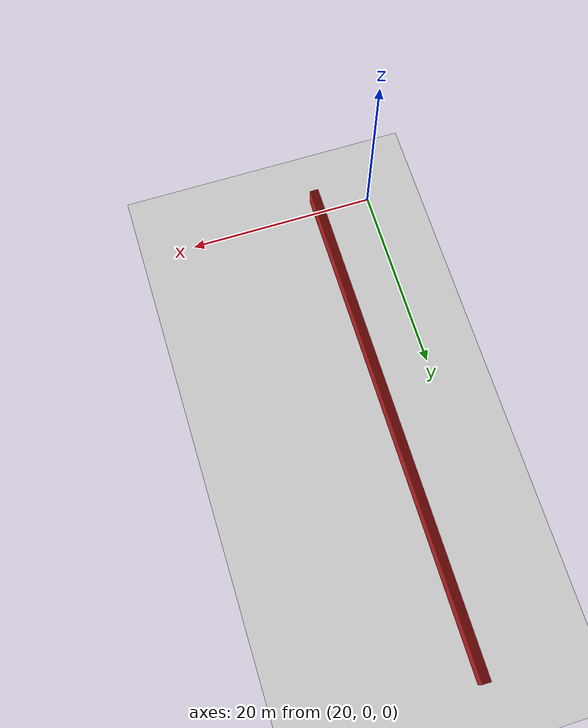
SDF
<sdf version="1.4">
 <world name="1_wall">
  <model name="ground_plane">
   <static>1</static>
   <link name="link">
    <collision name="collision">
     <geometry><plane><normal>0 0 1</normal><size>1000 1000</size></plane></geometry>
     <surface><friction><ode><mu>100</mu><mu2>50</mu2></ode></friction></surface>
    </collision>
    <visual name="visual">
     <cast_shadows>0</cast_shadows>
     <geometry><plane><normal>0 0 1</normal><size>10000 10000</size></plane></geometry>
     <material>
      <script><uri>file://media/materials/scripts/gazebo.material</uri><name>Gazebo/Grey</name></script>
     </material>
    </visual>
    <velocity_decay><linear>0</linear><angular>0</angular></velocity_decay>
   </link>
  </model>
  <model name="Wall_537">
   <static>1</static>
   <link name="Wall_537">
    <collision name="Wall_Collision_537">
     <geometry><box><size>53.65 0.05 2.5</size></box></geometry>
     <pose>0 0 1.25 0 -0 0</pose>
    </collision>
    <visual name="Wall_Visual_537">
     <pose>0 0 1.25 0 -0 0</pose>
     <geometry><box><size>53.65 0.05 2.5</size></box></geometry>
     <material>
      <script><uri>file://media/materials/scripts/gazebo.material</uri><name>Gazebo/Red</name></script>
     </material>
    </visual>
    <velocity_decay><linear>0</linear><angular>0</angular></velocity_decay>
    <pose>25.35 25.3 0 0 0 1.5707963267948966</pose>
   </link>
  </model>
  <model name="Wall_538">
   <static>1</static>
   <link name="Wall_538">
    <collision name="Wall_Collision_538">
     <geometry><box><size>53.65 0.05 2.5</size></box></geometry>
     <pose>0 0 1.25 0 -0 0</pose>
    </collision>
    <visual name="Wall_Visual_538">
     <pose>0 0 1.25 0 -0 0</pose>
     <geometry><box><size>53.65 0.05 2.5</size></box></geometry>
     <material>
      <script><uri>file://media/materials/scripts/gazebo.material</uri><name>Gazebo/Red</name></script>
     </material>
    </visual>
    <velocity_decay><linear>0</linear><angular>0</angular></velocity_decay>
    <pose>25.4 25.3 0 0 0 1.5707963267948966</pose>
   </link>
  </model>
  <model name="Wall_539">
   <static>1</static>
   <link name="Wall_539">
    <collision name="Wall_Collision_539">
     <geometry><box><size>53.65 0.05 2.5</size></box></geometry>
     <pose>0 0 1.25 0 -0 0</pose>
    </collision>
    <visual name="Wall_Visual_539">
     <pose>0 0 1.25 0 -0 0</pose>
     <geometry><box><size>53.65 0.05 2.5</size></box></geometry>
     <material>
      <script><uri>file://media/materials/scripts/gazebo.material</uri><name>Gazebo/Red</name></script>
     </material>
    </visual>
    <velocity_decay><linear>0</linear><angular>0</angular></velocity_decay>
    <pose>25.45 25.3 0 0 0 1.5707963267948966</pose>
   </link>
  </model>
  <model name="Wall_540">
   <static>1</static>
   <link name="Wall_540">
    <collision name="Wall_Collision_540">
     <geometry><box><size>53.65 0.05 2.5</size></box></geometry>
     <pose>0 0 1.25 0 -0 0</pose>
    </collision>
    <visual name="Wall_Visual_540">
     <pose>0 0 1.25 0 -0 0</pose>
     <geometry><box><size>53.65 0.05 2.5</size></box></geometry>
     <material>
      <script><uri>file://media/materials/scripts/gazebo.material</uri><name>Gazebo/Red</name></script>
     </material>
    </visual>
    <velocity_decay><linear>0</linear><angular>0</angular></velocity_decay>
    <pose>25.5 25.3 0 0 0 1.5707963267948966</pose>
   </link>
  </model>
  <model name="Wall_541">
   <static>1</static>
   <link name="Wall_541">
    <collision name="Wall_Collision_541">
     <geometry><box><size>53.65 0.05 2.5</size></box></geometry>
     <pose>0 0 1.25 0 -0 0</pose>
    </collision>
    <visual name="Wall_Visual_541">
     <pose>0 0 1.25 0 -0 0</pose>
     <geometry><box><size>53.65 0.05 2.5</size></box></geometry>
     <material>
      <script><uri>file://media/materials/scripts/gazebo.material</uri><name>Gazebo/Red</name></script>
     </material>
    </visual>
    <velocity_decay><linear>0</linear><angular>0</angular></velocity_decay>
    <pose>25.55 25.3 0 0 0 1.5707963267948966</pose>
   </link>
  </model>
  <model name="Wall_542">
   <static>1</static>
   <link name="Wall_542">
    <collision name="Wall_Collision_542">
     <geometry><box><size>53.65 0.05 2.5</size></box></geometry>
     <pose>0 0 1.25 0 -0 0</pose>
    </collision>
    <visual name="Wall_Visual_542">
     <pose>0 0 1.25 0 -0 0</pose>
     <geometry><box><size>53.65 0.05 2.5</size></box></geometry>
     <material>
      <script><uri>file://media/materials/scripts/gazebo.material</uri><name>Gazebo/Red</name></script>
     </material>
    </visual>
    <velocity_decay><linear>0</linear><angular>0</angular></velocity_decay>
    <pose>25.6 25.3 0 0 0 1.5707963267948966</pose>
   </link>
  </model>
  <model name="Wall_543">
   <static>1</static>
   <link name="Wall_543">
    <collision name="Wall_Collision_543">
     <geometry><box><size>53.65 0.05 2.5</size></box></geometry>
     <pose>0 0 1.25 0 -0 0</pose>
    </collision>
    <visual name="Wall_Visual_543">
     <pose>0 0 1.25 0 -0 0</pose>
     <geometry><box><size>53.65 0.05 2.5</size></box></geometry>
     <material>
      <script><uri>file://media/materials/scripts/gazebo.material</uri><name>Gazebo/Red</name></script>
     </material>
    </visual>
    <velocity_decay><linear>0</linear><angular>0</angular></velocity_decay>
    <pose>25.65 25.3 0 0 0 1.5707963267948966</pose>
   </link>
  </model>
  <model name="Wall_544">
   <static>1</static>
   <link name="Wall_544">
    <collision name="Wall_Collision_544">
     <geometry><box><size>53.65 0.05 2.5</size></box></geometry>
     <pose>0 0 1.25 0 -0 0</pose>
    </collision>
    <visual name="Wall_Visual_544">
     <pose>0 0 1.25 0 -0 0</pose>
     <geometry><box><size>53.65 0.05 2.5</size></box></geometry>
     <material>
      <script><uri>file://media/materials/scripts/gazebo.material</uri><name>Gazebo/Red</name></script>
     </material>
    </visual>
    <velocity_decay><linear>0</linear><angular>0</angular></velocity_decay>
    <pose>25.7 25.3 0 0 0 1.5707963267948966</pose>
   </link>
  </model>
  <model name="Wall_545">
   <static>1</static>
   <link name="Wall_545">
    <collision name="Wall_Collision_545">
     <geometry><box><size>53.65 0.05 2.5</size></box></geometry>
     <pose>0 0 1.25 0 -0 0</pose>
    </collision>
    <visual name="Wall_Visual_545">
     <pose>0 0 1.25 0 -0 0</pose>
     <geometry><box><size>53.65 0.05 2.5</size></box></geometry>
     <material>
      <script><uri>file://media/materials/scripts/gazebo.material</uri><name>Gazebo/Red</name></script>
     </material>
    </visual>
    <velocity_decay><linear>0</linear><angular>0</angular></velocity_decay>
    <pose>25.75 25.3 0 0 0 1.5707963267948966</pose>
   </link>
  </model>
  <model name="Wall_546">
   <static>1</static>
   <link name="Wall_546">
    <collision name="Wall_Collision_546">
     <geometry><box><size>53.65 0.05 2.5</size></box></geometry>
     <pose>0 0 1.25 0 -0 0</pose>
    </collision>
    <visual name="Wall_Visual_546">
     <pose>0 0 1.25 0 -0 0</pose>
     <geometry><box><size>53.65 0.05 2.5</size></box></geometry>
     <material>
      <script><uri>file://media/materials/scripts/gazebo.material</uri><name>Gazebo/Red</name></script>
     </material>
    </visual>
    <velocity_decay><linear>0</linear><angular>0</angular></velocity_decay>
    <pose>25.8 25.3 0 0 0 1.5707963267948966</pose>
   </link>
  </model>
  <model name="Wall_547">
   <static>1</static>
   <link name="Wall_547">
    <collision name="Wall_Collision_547">
     <geometry><box><size>53.65 0.05 2.5</size></box></geometry>
     <pose>0 0 1.25 0 -0 0</pose>
    </collision>
    <visual name="Wall_Visual_547">
     <pose>0 0 1.25 0 -0 0</pose>
     <geometry><box><size>53.65 0.05 2.5</size></box></geometry>
     <material>
      <script><uri>file://media/materials/scripts/gazebo.material</uri><name>Gazebo/Red</name></script>
     </material>
    </visual>
    <velocity_decay><linear>0</linear><angular>0</angular></velocity_decay>
    <pose>25.85 25.3 0 0 0 1.5707963267948966</pose>
   </link>
  </model>
  <model name="Wall_548">
   <static>1</static>
   <link name="Wall_548">
    <collision name="Wall_Collision_548">
     <geometry><box><size>53.65 0.05 2.5</size></box></geometry>
     <pose>0 0 1.25 0 -0 0</pose>
    </collision>
    <visual name="Wall_Visual_548">
     <pose>0 0 1.25 0 -0 0</pose>
     <geometry><box><size>53.65 0.05 2.5</size></box></geometry>
     <material>
      <script><uri>file://media/materials/scripts/gazebo.material</uri><name>Gazebo/Red</name></script>
     </material>
    </visual>
    <velocity_decay><linear>0</linear><angular>0</angular></velocity_decay>
    <pose>25.9 25.3 0 0 0 1.5707963267948966</pose>
   </link>
  </model>
  <model name="Wall_549">
   <static>1</static>
   <link name="Wall_549">
    <collision name="Wall_Collision_549">
     <geometry><box><size>53.65 0.05 2.5</size></box></geometry>
     <pose>0 0 1.25 0 -0 0</pose>
    </collision>
    <visual name="Wall_Visual_549">
     <pose>0 0 1.25 0 -0 0</pose>
     <geometry><box><size>53.65 0.05 2.5</size></box></geometry>
     <material>
      <script><uri>file://media/materials/scripts/gazebo.material</uri><name>Gazebo/Red</name></script>
     </material>
    </visual>
    <velocity_decay><linear>0</linear><angular>0</angular></velocity_decay>
    <pose>25.95 25.3 0 0 0 1.5707963267948966</pose>
   </link>
  </model>
  <model name="Wall_550">
   <static>1</static>
   <link name="Wall_550">
    <collision name="Wall_Collision_550">
     <geometry><box><size>53.65 0.05 2.5</size></box></geometry>
     <pose>0 0 1.25 0 -0 0</pose>
    </collision>
    <visual name="Wall_Visual_550">
     <pose>0 0 1.25 0 -0 0</pose>
     <geometry><box><size>53.65 0.05 2.5</size></box></geometry>
     <material>
      <script><uri>file://media/materials/scripts/gazebo.material</uri><name>Gazebo/Red</name></script>
     </material>
    </visual>
    <velocity_decay><linear>0</linear><angular>0</angular></velocity_decay>
    <pose>26.0 25.3 0 0 0 1.5707963267948966</pose>
   </link>
  </model>
  <model name="Wall_551">
   <static>1</static>
   <link name="Wall_551">
    <collision name="Wall_Collision_551">
     <geometry><box><size>53.65 0.05 2.5</size></box></geometry>
     <pose>0 0 1.25 0 -0 0</pose>
    </collision>
    <visual name="Wall_Visual_551">
     <pose>0 0 1.25 0 -0 0</pose>
     <geometry><box><size>53.65 0.05 2.5</size></box></geometry>
     <material>
      <script><uri>file://media/materials/scripts/gazebo.material</uri><name>Gazebo/Red</name></script>
     </material>
    </visual>
    <velocity_decay><linear>0</linear><angular>0</angular></velocity_decay>
    <pose>26.05 25.3 0 0 0 1.5707963267948966</pose>
   </link>
  </model>
  <model name="Wall_552">
   <static>1</static>
   <link name="Wall_552">
    <collision name="Wall_Collision_552">
     <geometry><box><size>53.65 0.05 2.5</size></box></geometry>
     <pose>0 0 1.25 0 -0 0</pose>
    </collision>
    <visual name="Wall_Visual_552">
     <pose>0 0 1.25 0 -0 0</pose>
     <geometry><box><size>53.65 0.05 2.5</size></box></geometry>
     <material>
      <script><uri>file://media/materials/scripts/gazebo.material</uri><name>Gazebo/Red</name></script>
     </material>
    </visual>
    <velocity_decay><linear>0</linear><angular>0</angular></velocity_decay>
    <pose>26.1 25.3 0 0 0 1.5707963267948966</pose>
   </link>
  </model>
  <model name="Wall_553">
   <static>1</static>
   <link name="Wall_553">
    <collision name="Wall_Collision_553">
     <geometry><box><size>53.65 0.05 2.5</size></box></geometry>
     <pose>0 0 1.25 0 -0 0</pose>
    </collision>
    <visual name="Wall_Visual_553">
     <pose>0 0 1.25 0 -0 0</pose>
     <geometry><box><size>53.65 0.05 2.5</size></box></geometry>
     <material>
      <script><uri>file://media/materials/scripts/gazebo.material</uri><name>Gazebo/Red</name></script>
     </material>
    </visual>
    <velocity_decay><linear>0</linear><angular>0</angular></velocity_decay>
    <pose>26.15 25.3 0 0 0 1.5707963267948966</pose>
   </link>
  </model>
  <model name="Wall_554">
   <static>1</static>
   <link name="Wall_554">
    <collision name="Wall_Collision_554">
     <geometry><box><size>53.65 0.05 2.5</size></box></geometry>
     <pose>0 0 1.25 0 -0 0</pose>
    </collision>
    <visual name="Wall_Visual_554">
     <pose>0 0 1.25 0 -0 0</pose>
     <geometry><box><size>53.65 0.05 2.5</size></box></geometry>
     <material>
      <script><uri>file://media/materials/scripts/gazebo.material</uri><name>Gazebo/Red</name></script>
     </material>
    </visual>
    <velocity_decay><linear>0</linear><angular>0</angular></velocity_decay>
    <pose>26.2 25.3 0 0 0 1.5707963267948966</pose>
   </link>
  </model>
 </world>
</sdf>
